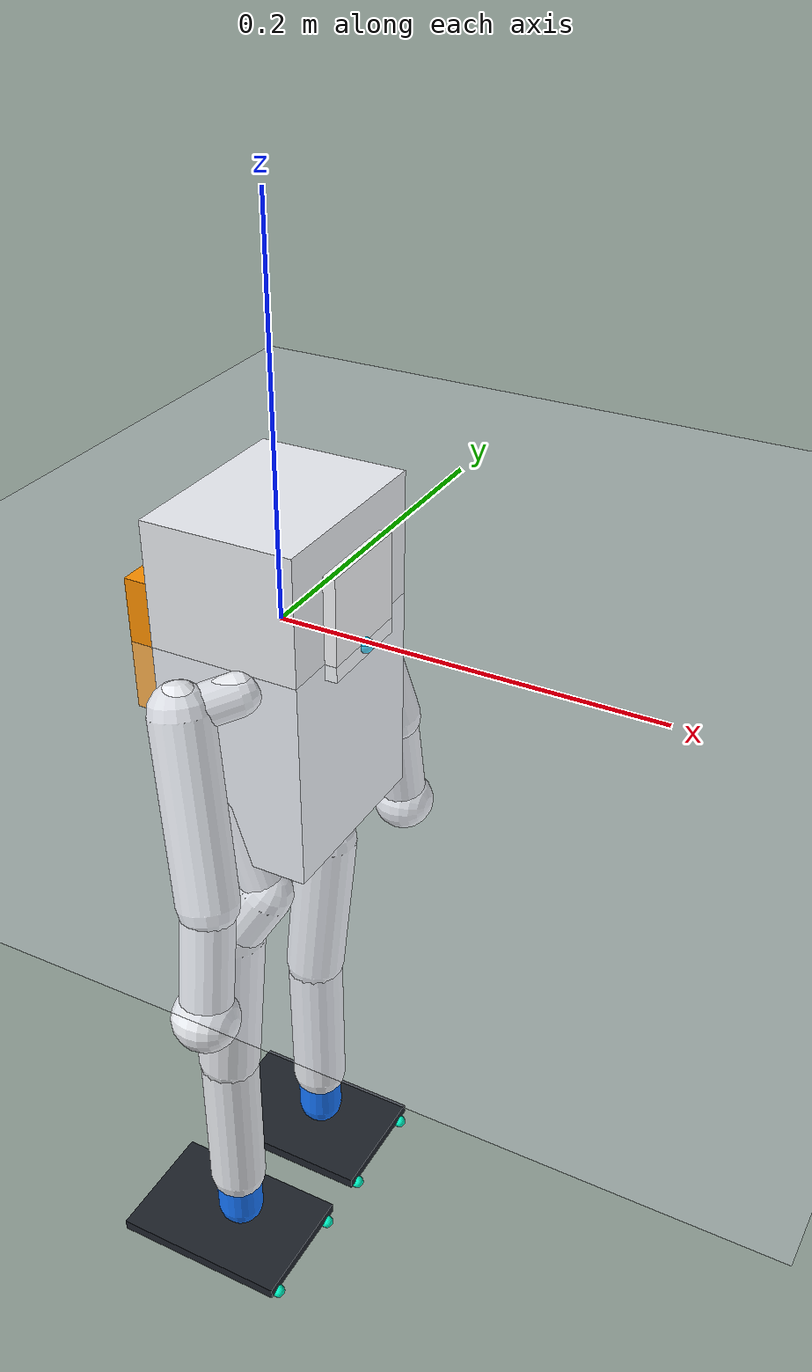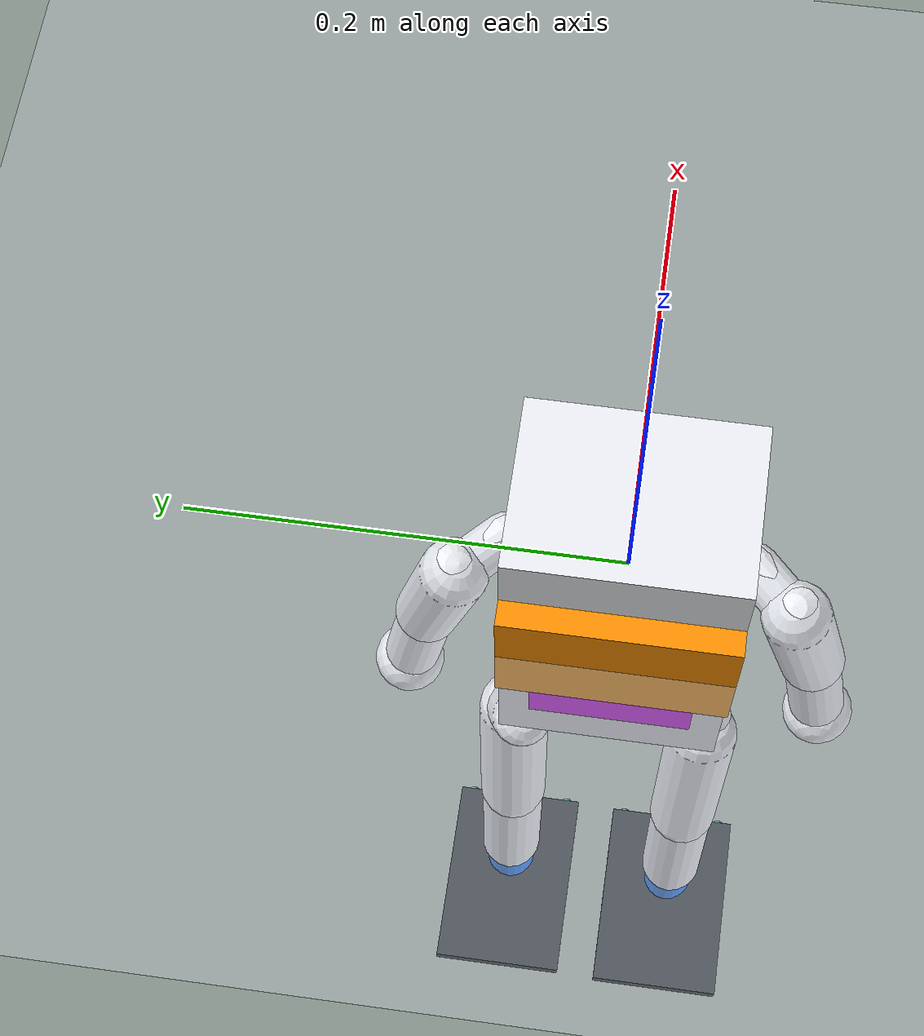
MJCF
<?xml version='1.0' encoding='utf-8'?>
<mujoco model="zeroth01_physical_mount_v3_rl_fixed_18dof_mjx">
  <compiler angle="radian" coordinate="local" autolimits="true" />
  <option timestep="0.002" gravity="0 0 -9.81" integrator="implicitfast" />
  <size njmax="2000" nconmax="400" />
  <default>
    <joint damping="0.035" armature="0.002" frictionloss="0.01" />
    <geom margin="0.001" condim="3" friction="1.0 0.02 0.001" />
  </default>
  <visual>
    <headlight diffuse="0.75 0.75 0.75" ambient="0.35 0.35 0.35" />
    <rgba haze="0.15 0.18 0.22 1" />
  </visual>
  <worldbody>
    <light pos="0 -1 1.2" dir="0 0 -1" directional="true" />
    <geom name="ground" type="plane" size="2 2 0.02" rgba="0.82 0.84 0.88 1" friction="1.2 0.02 0.001" />
    <body name="Z_BOT2_MASTER_BODY_SKELETON" pos="0 0 0" quat="0.707388269167 0 0 0.706825181105">
      <freejoint name="floating_base" />
      <inertial pos="0 0 -0.025" mass="0.743471828" diaginertia="0.00240472129038 0.00269126736067 0.00108124077985" />
      <geom name="torso_collision" type="box" size="0.0525318364224 0.0400417944696 0.09" pos="0 0 -0.025" rgba="0.93 0.94 0.96 1" friction="1.0 0.02 0.001" />
      <site name="imu_site" pos="0 0 0.02" size="0.006" rgba="0.2 1 0.2 1" />
      <body name="Z_BOT2_MASTER_SHOULDER2" pos="0.055995 -0.01061 -0.009528" quat="1.22474523098e-07 1.22474483074e-07 0.707106665647 0.707106896726">
        <joint name="left_shoulder_yaw" type="hinge" axis="0 0 1" range="-0.12 0.12" limited="true" />
        <inertial pos="-0.0104225 -0.00245 0.0094" mass="0.02" diaginertia="3.98041666667e-06 5.83389004167e-06 4.26550670833e-06" />
        <geom type="capsule" fromto="0 0 0 -0.020845 -0.0049 0.0188" size="0.011" name="Z_BOT2_MASTER_SHOULDER2_collision" rgba="0.92 0.93 0.95 1" />
        <body name="3215_1Flange" pos="-0.020845 -0.0049 0.0188" quat="0.500000163397 -0.5 0.499999836603 -0.5">
          <joint name="left_shoulder_pitch" type="hinge" axis="0 0 1" range="-0.47123889 0.47123889" limited="true" />
          <inertial pos="0.046492 0.0099 -0.0093" mass="0.149" diaginertia="6.51080333333e-05 0.000225751889845 0.000227277649845" />
          <geom type="capsule" fromto="0 0 0 0.092984 0.0198 -0.0186" size="0.016" name="3215_1Flange_collision" rgba="0.92 0.93 0.95 1" />
          <body name="R_ARM_MIRROR_1" pos="0.092984 0.0198 -0.0186" quat="-1.22474523098e-07 -1.22474483074e-07 0.707106665647 0.707106896726">
            <joint name="left_elbow_yaw" type="hinge" axis="0 0 -1" range="-0.34 0.24" limited="true" />
            <inertial pos="-0.033103 -0.005889 0.00063" mass="0.03" diaginertia="6.09609221e-06 2.432729509e-05 2.61426493e-05" />
            <geom type="capsule" fromto="0 0 0 -0.066206 -0.011778 0.00126" size="0.014" name="R_ARM_MIRROR_1_collision" rgba="0.92 0.93 0.95 1" />
            <body name="FINGER_1" pos="-0.066206 -0.011778 0.00126" quat="-9.93463784844e-08 0.573576508925 0.819151993472 -1.41881305656e-07">
              <inertial pos="0 0 0" mass="0.025" diaginertia="5.4e-06 5.4e-06 5.4e-06" />
              <geom type="sphere" size="0.018" name="FINGER_1_collision" rgba="0.94 0.95 0.97 1" />
            </body>
          </body>
        </body>
      </body>
      <body name="Z_BOT2_MASTER_SHOULDER2_2" pos="-0.055995 -0.01061 -0.009528" quat="0.707106896726 -0.707106665647 0 0">
        <joint name="right_shoulder_yaw" type="hinge" axis="0 0 1" range="-0.12 0.12" limited="true" />
        <inertial pos="-0.0104225 0.00245 0.0094" mass="0.02" diaginertia="3.98041666667e-06 5.83389004167e-06 4.26550670833e-06" />
        <geom type="capsule" fromto="0 0 0 -0.020845 0.0049 0.0188" size="0.011" name="Z_BOT2_MASTER_SHOULDER2_2_collision" rgba="0.92 0.93 0.95 1" />
        <body name="3215_1Flange_2" pos="-0.020845 0.0049 0.0188" quat="0.500000163397 0.5 0.499999836603 0.5">
          <joint name="right_shoulder_pitch" type="hinge" axis="0 0 1" range="-0.47123889 0.47123889" limited="true" />
          <inertial pos="0.046492 -0.0099 -0.0093" mass="0.149" diaginertia="6.51080333333e-05 0.000225751889845 0.000227277649845" />
          <geom type="capsule" fromto="0 0 0 0.092984 -0.0198 -0.0186" size="0.016" name="3215_1Flange_2_collision" rgba="0.92 0.93 0.95 1" />
          <body name="L_ARM_MIRROR_1" pos="0.092984 -0.0198 -0.0186" quat="0.500000163397 -0.5 -0.5 -0.499999836603">
            <joint name="right_elbow_yaw" type="hinge" axis="0 0 1" range="-0.24 0.34" limited="true" />
            <inertial pos="-0.005889 0.033103 -0.00063" mass="0.03" diaginertia="2.432729509e-05 6.09609221e-06 2.61426493e-05" />
            <geom type="capsule" fromto="0 0 0 -0.011778 0.066206 -0.00126" size="0.014" name="L_ARM_MIRROR_1_collision" rgba="0.92 0.93 0.95 1" />
            <body name="FINGER_1_2" pos="-0.011778 0.066206 -0.00126" quat="0.984807740023 3.29132692615e-21 -8.69526751844e-21 0.173648251331">
              <inertial pos="0 0 0" mass="0.025" diaginertia="5.4e-06 5.4e-06 5.4e-06" />
              <geom type="sphere" size="0.018" name="FINGER_1_2_collision" rgba="0.94 0.95 0.97 1" />
            </body>
          </body>
        </body>
      </body>
      <body name="U_HIP_L" pos="0.042808 0.007735 -0.083418" quat="3.00000078125e-14 -1.7320510331e-07 1 -1.7320510331e-07">
        <joint name="left_hip_yaw" type="hinge" axis="0 0 1" range="-0.322013241 0.026179939" limited="true" />
        <inertial pos="3.46944695195e-18 0.00885 0.0282" mass="0.02" diaginertia="1.367175e-05 1.17336e-05 3.85815e-06" />
        <geom type="capsule" fromto="0 0 0 6.93889390391e-18 0.0177 0.0564" size="0.012" name="U_HIP_L_collision" rgba="0.92 0.93 0.95 1" />
        <body name="3215_BothFlange_5" pos="0 0.0177 0.0564" quat="0.707106896726 -0.707106665647 0 0">
          <joint name="left_hip_roll" type="hinge" axis="0 0 -1" range="-0.06 0.22" limited="true" />
          <inertial pos="-0.0032 -0.016 -0.00895" mass="0.0995" diaginertia="5.08976495833e-05 3.00106095833e-05 4.28592933333e-05" />
          <geom type="capsule" fromto="0 0 0 -0.0064 -0.032 -0.0179" size="0.015" name="3215_BothFlange_5_collision" rgba="0.92 0.93 0.95 1" />
          <body name="3215_BothFlange_9" pos="-0.0064 -0.032 -0.0179" quat="0.500000163397 0.5 -0.499999836603 -0.5">
            <joint name="left_hip_pitch" type="hinge" axis="0 0 1" range="-0.027495556 0.412327408" limited="true" />
            <inertial pos="0.05 0.005 -0.00063" mass="0.1745" diaginertia="5.09584730167e-05 0.000289150973017 0.000299732833333" />
            <geom type="capsule" fromto="0 0 0 0.1 0.01 -0.00126" size="0.018" name="3215_BothFlange_9_collision" rgba="0.92 0.93 0.95 1" />
            <body name="3215_BothFlange_13" pos="0.1 0.01 -0.00126" quat="1 0 0 0">
              <joint name="left_knee_pitch" type="hinge" axis="0 0 1" range="-0.83285928 0" limited="true" />
              <inertial pos="0.05 0 0.0004" mass="0.229" diaginertia="4.51710133333e-05 0.000365771013333 0.000364720666667" />
              <geom type="capsule" fromto="0 0 0 0.1 0 0.0008" size="0.017" name="3215_BothFlange_13_collision" rgba="0.92 0.93 0.95 1" />
              <body name="left_ankle_roll_carrier" pos="0.1 0 0.0008" quat="1.22474523098e-07 0.707106896726 0.707106665647 1.22474483074e-07">
                <joint name="left_ankle_pitch" type="hinge" axis="0 0 1" range="-0.66415928 0" limited="true" />
                <inertial pos="1.49999983927e-08 0.015 2.94226351616e-10" mass="0.0995" diaginertia="3.43938336066e-05 1.30013475366e-05 3.43938472633e-05" />
                <geom type="capsule" fromto="0 0 0 2.99999967854e-08 0.03 5.88452703232e-10" size="0.014" name="left_ankle_roll_carrier_collision" rgba="0.086 0.467 1 1" />
                <body name="FOOT" pos="2.99999967854e-08 0.03 5.88452703232e-10" quat="1 0 0 0">
                  <joint name="left_ankle_roll" type="hinge" axis="-0.999999683467 1.00001518318e-06 -0.000795653505717" range="-0.25 0.25" limited="true" />
                  <inertial pos="0.0100000183347 0.0214999899998 7.95695678161e-06" mass="0.07" diaginertia="3.31749480895e-05 0.000103549005693 7.09457424679e-05" />
                  <geom name="FOOT_collision" type="box" size="0.0550298230972 0.00350005570656 0.0375437491415" pos="0.0100000183347 0.0214999899998 7.95695678161e-06" rgba="0.12 0.14 0.17 1" friction="1.2 0.02 0.001" />
                  <site name="left_sole_front_medial" pos="-0.0450238283612 0.0270000444361 0.0299641866259" size="0.004" rgba="0 1 0.8 1" />
                  <site name="left_sole_front_lateral" pos="-0.0449760891509 0.0270000455653 -0.0300357943822" size="0.004" rgba="0 1 0.8 1" />
                  <site name="left_sole_rear_medial" pos="0.0549761399855 0.0269999444346 0.0300437519765" size="0.004" rgba="0 1 0.8 1" />
                  <site name="left_sole_rear_lateral" pos="0.0550238791959 0.0269999455637 -0.0299562290316" size="0.004" rgba="0 1 0.8 1" />
                </body>
              </body>
            </body>
          </body>
        </body>
      </body>
      <body name="U_HIP_R" pos="-0.042868 0.007735 -0.083418" quat="3.00000078125e-14 -1.7320510331e-07 1 -1.7320510331e-07">
        <joint name="right_hip_yaw" type="hinge" axis="0 0 1" range="-0.026179939 0.322013241" limited="true" />
        <inertial pos="0 -0.00885 0.0282" mass="0.02" diaginertia="1.367175e-05 1.17336e-05 3.85815e-06" />
        <geom type="capsule" fromto="0 0 0 0 -0.0177 0.0564" size="0.012" name="U_HIP_R_collision" rgba="0.92 0.93 0.95 1" />
        <body name="3215_BothFlange_6" pos="0 -0.0177 0.0564" quat="1.22474523098e-07 -1.22474483074e-07 -0.707106665647 0.707106896726">
          <joint name="right_hip_roll" type="hinge" axis="0 0 1" range="-0.22 0.06" limited="true" />
          <inertial pos="-0.0032 -0.016 -0.00945" mass="0.0995" diaginertia="5.17002829167e-05 3.08132429167e-05 4.28592933333e-05" />
          <geom type="capsule" fromto="0 0 0 -0.0064 -0.032 -0.0189" size="0.015" name="3215_BothFlange_6_collision" rgba="0.92 0.93 0.95 1" />
          <body name="3215_BothFlange_10" pos="-0.0064 -0.032 -0.0189" quat="0.500000163397 0.5 -0.499999836603 -0.5">
            <joint name="right_hip_pitch" type="hinge" axis="0 0 1" range="-0.412327408 0.027495556" limited="true" />
            <inertial pos="0.05 -0.005 -0.00063" mass="0.1745" diaginertia="5.09584730167e-05 0.000289150973017 0.000299732833333" />
            <geom type="capsule" fromto="0 0 0 0.1 -0.01 -0.00126" size="0.018" name="3215_BothFlange_10_collision" rgba="0.92 0.93 0.95 1" />
            <body name="3215_BothFlange_14" pos="0.1 -0.01 -0.00126" quat="1 0 0 0">
              <joint name="right_knee_pitch" type="hinge" axis="0 0 1" range="0 0.83285928" limited="true" />
              <inertial pos="0.05 0 0.0005" mass="0.229" diaginertia="4.54374166667e-05 0.000366037416667 0.000364720666667" />
              <geom type="capsule" fromto="0 0 0 0.1 0 0.001" size="0.017" name="3215_BothFlange_14_collision" rgba="0.92 0.93 0.95 1" />
              <body name="right_ankle_roll_carrier" pos="0.1 0 0.001" quat="1.22474523098e-07 0.707106896726 -0.707106665647 -1.22474483074e-07">
                <joint name="right_ankle_pitch" type="hinge" axis="0 0 1" range="0 0.66415928" limited="true" />
                <inertial pos="5.19615470096e-09 -0.015 -1.00980746508e-08" mass="0.0995" diaginertia="3.43938427111e-05 1.30013475366e-05 3.43938381588e-05" />
                <geom type="capsule" fromto="0 0 0 1.03923094019e-08 -0.03 -2.01961493015e-08" size="0.014" name="right_ankle_roll_carrier_collision" rgba="0.086 0.467 1 1" />
                <body name="FOOT_2" pos="1.03923094019e-08 -0.03 -2.01961493015e-08" quat="1 0 0 0">
                  <joint name="right_ankle_roll" type="hinge" axis="0.999999683743 3.46945608555e-07 -0.00079530709562" range="-0.25 0.25" limited="true" />
                  <inertial pos="0.0100000042853 -0.0214999965305 -7.9675448632e-06" mass="0.07" diaginertia="3.31749168743e-05 0.000103548937143 7.09457014119e-05" />
                  <geom name="FOOT_2_collision" type="box" size="0.0550298078344 0.00350004431685 0.0375437323868" pos="0.0100000042853 -0.0214999965305 -7.9675448632e-06" rgba="0.12 0.14 0.17 1" friction="1.2 0.02 0.001" />
                  <site name="right_sole_front_medial" pos="-0.0450238356282 -0.0269999954247 -0.0299642198695" size="0.004" rgba="0 1 0.8 1" />
                  <site name="right_sole_front_lateral" pos="-0.0449761172025 -0.0270000358004 0.0300357611551" size="0.004" rgba="0 1 0.8 1" />
                  <site name="right_sole_rear_medial" pos="0.0549761327461 -0.0269999607301 -0.0300437505791" size="0.004" rgba="0 1 0.8 1" />
                  <site name="right_sole_rear_lateral" pos="0.0550238511718 -0.0270000011059 0.0299562304455" size="0.004" rgba="0 1 0.8 1" />
                </body>
              </body>
            </body>
          </body>
        </body>
      </body>
      <body name="IMU_2" pos="0.04447 0.006575 -0.025518" quat="0.500000163397 0.5 -0.499999836603 -0.5">
        <inertial pos="0 0 0" mass="0.004" diaginertia="2.29666666667e-07 3.62666666667e-07 5.49666666667e-07" />
        <geom name="IMU_2_visual" type="box" size="0.016 0.0125 0.004" contype="0" conaffinity="0" rgba="0.39 0.87 0.09 1" />
      </body>
      <body name="torso_imu_module" pos="0 0.012 0.018" quat="1 0 0 0">
        <inertial pos="0 0 0" mass="0.01" diaginertia="5.74166666667e-07 9.06666666667e-07 1.37416666667e-06" />
        <geom name="torso_imu_module_visual" type="box" size="0.016 0.0125 0.004" contype="0" conaffinity="0" rgba="0.39 0.87 0.09 1" />
      </body>
      <body name="compute_module" pos="-6.77626357803e-21 0.042 -0.002" quat="1 0 0 0">
        <inertial pos="0 0 0" mass="0.1" diaginertia="4.41666666667e-05 0.000132708333333 9.52083333333e-05" />
        <geom name="compute_module_visual" type="box" size="0.0525 0.01 0.035" contype="0" conaffinity="0" rgba="1 0.57 0 1" />
      </body>
      <body name="battery_pack" pos="0 0.028 -0.052" quat="1 0 0 0">
        <inertial pos="0 0 0" mass="0.2" diaginertia="4.81333333333e-05 0.000117816666667 0.000117816666667" />
        <geom name="battery_pack_visual" type="box" size="0.0375 0.019 0.019" contype="0" conaffinity="0" rgba="0.84 0 0.98 1" />
      </body>
      <body name="cores3_internal_torso_cradle" pos="2.3889801322e-05 -0.029999990488 0.018" quat="0.707388269167 0 0 -0.706825181105">
        <inertial pos="0 0 0" mass="0.006" diaginertia="2.482e-06 8.45125e-07 1.727125e-06" />
        <geom name="cores3_internal_torso_cradle_collision" type="box" size="0.00475 0.029 0.02" rgba="0.75 0.78 0.82 1" />
        <body name="m5stack_cores3_head_module" pos="0.00875 0 0">
          <inertial pos="0 0 0" mass="0.0727" diaginertia="3.53322e-05 1.91216145833e-05 1.91216145833e-05" />
          <geom name="m5stack_cores3_head_module_collision" type="box" size="0.00775 0.027 0.027" rgba="0.97 0.98 0.99 1" />
          <site name="cores3_camera_site" pos="0.00825 0 -0.020" size="0.004" rgba="0 0.8 1 1" />
        </body>
      </body>
    </body>
  </worldbody>
  <actuator>
    <motor name="left_shoulder_yaw_motor" joint="left_shoulder_yaw" gear="1" ctrllimited="true" ctrlrange="-1.2552512 1.2552512" />
    <motor name="right_shoulder_yaw_motor" joint="right_shoulder_yaw" gear="1" ctrllimited="true" ctrlrange="-1.2552512 1.2552512" />
    <motor name="left_shoulder_pitch_motor" joint="left_shoulder_pitch" gear="1" ctrllimited="true" ctrlrange="-1.2552512 1.2552512" />
    <motor name="right_shoulder_pitch_motor" joint="right_shoulder_pitch" gear="1" ctrllimited="true" ctrlrange="-1.2552512 1.2552512" />
    <motor name="left_elbow_yaw_motor" joint="left_elbow_yaw" gear="1" ctrllimited="true" ctrlrange="-1.2552512 1.2552512" />
    <motor name="right_elbow_yaw_motor" joint="right_elbow_yaw" gear="1" ctrllimited="true" ctrlrange="-1.2552512 1.2552512" />
    <motor name="left_hip_yaw_motor" joint="left_hip_yaw" gear="1" ctrllimited="true" ctrlrange="-1.2552512 1.2552512" />
    <motor name="right_hip_yaw_motor" joint="right_hip_yaw" gear="1" ctrllimited="true" ctrlrange="-1.2552512 1.2552512" />
    <motor name="left_hip_roll_motor" joint="left_hip_roll" gear="1" ctrllimited="true" ctrlrange="-1.2552512 1.2552512" />
    <motor name="right_hip_roll_motor" joint="right_hip_roll" gear="1" ctrllimited="true" ctrlrange="-1.2552512 1.2552512" />
    <motor name="left_hip_pitch_motor" joint="left_hip_pitch" gear="1" ctrllimited="true" ctrlrange="-1.2552512 1.2552512" />
    <motor name="right_hip_pitch_motor" joint="right_hip_pitch" gear="1" ctrllimited="true" ctrlrange="-1.2552512 1.2552512" />
    <motor name="left_knee_pitch_motor" joint="left_knee_pitch" gear="1" ctrllimited="true" ctrlrange="-1.2552512 1.2552512" />
    <motor name="right_knee_pitch_motor" joint="right_knee_pitch" gear="1" ctrllimited="true" ctrlrange="-1.2552512 1.2552512" />
    <motor name="left_ankle_pitch_motor" joint="left_ankle_pitch" gear="1" ctrllimited="true" ctrlrange="-1.2552512 1.2552512" />
    <motor name="right_ankle_pitch_motor" joint="right_ankle_pitch" gear="1" ctrllimited="true" ctrlrange="-1.2552512 1.2552512" />
    <motor name="left_ankle_roll_motor" joint="left_ankle_roll" gear="1" ctrllimited="true" ctrlrange="-1.2552512 1.2552512" />
    <motor name="right_ankle_roll_motor" joint="right_ankle_roll" gear="1" ctrllimited="true" ctrlrange="-1.2552512 1.2552512" />
  </actuator>
  <sensor>
    <gyro name="imu_gyro" site="imu_site" />
    <accelerometer name="imu_accelerometer" site="imu_site" />
    <touch name="left_front_medial_touch" site="left_sole_front_medial" />
    <touch name="left_front_lateral_touch" site="left_sole_front_lateral" />
    <touch name="left_rear_medial_touch" site="left_sole_rear_medial" />
    <touch name="left_rear_lateral_touch" site="left_sole_rear_lateral" />
    <touch name="right_front_medial_touch" site="right_sole_front_medial" />
    <touch name="right_front_lateral_touch" site="right_sole_front_lateral" />
    <touch name="right_rear_medial_touch" site="right_sole_rear_medial" />
    <touch name="right_rear_lateral_touch" site="right_sole_rear_lateral" />
  </sensor>
  <keyframe>
    <key name="official_standing" qpos="0 0 0.426818000663 0.707388269167 0 0 0.706825181105 0 0 0 0 0 0 0 0 0 0 0 0 0 0 0 0 0 0" />
    <key name="symmetric_crouch" qpos="0 0 0.426818000663 0.707388269167 0 0 0.706825181105 0 0 0 0 0 0 0 0 0 0 0.18 -0.18 -0.36 0.36 -0.18 0.18 0 0" />
  </keyframe>
</mujoco>
